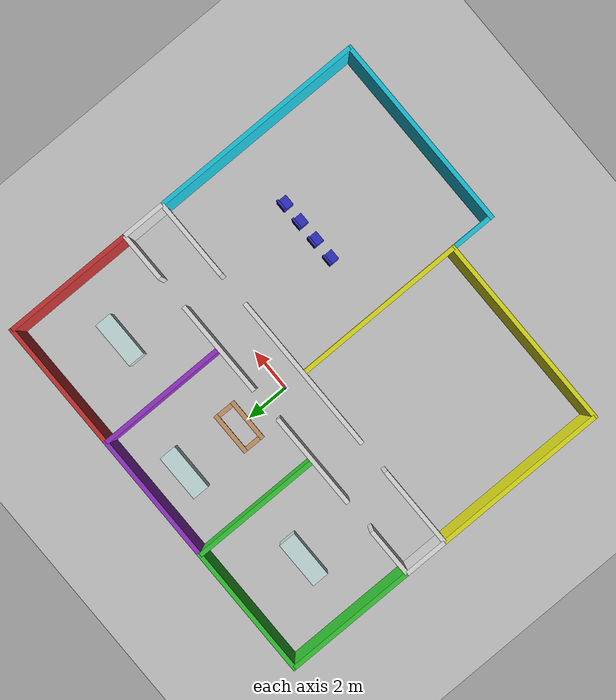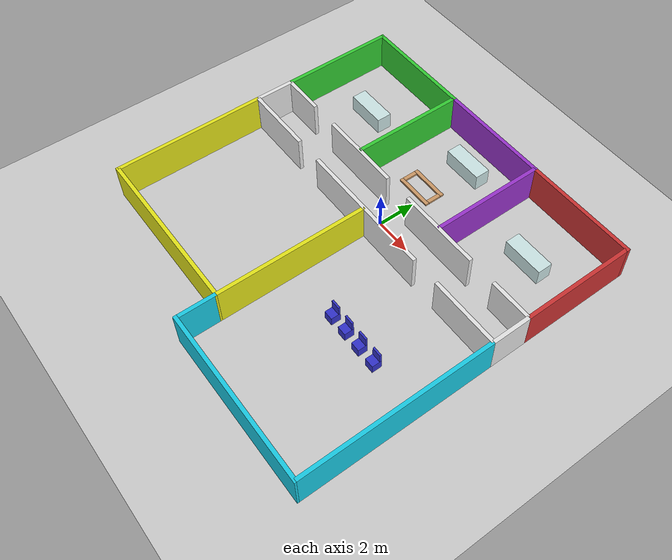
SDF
<sdf version="1.9">
 <world name="hospital_carrion_world">
  <physics name="1ms" type="ignored">
   <max_step_size>0.001</max_step_size>
   <real_time_factor>1</real_time_factor>
   <real_time_update_rate>1000</real_time_update_rate>
  </physics>
  <plugin name="gz::sim::systems::Physics" filename="ignition-gazebo-physics-system"/>
  <plugin name="gz::sim::systems::UserCommands" filename="ignition-gazebo-user-commands-system"/>
  <plugin name="gz::sim::systems::SceneBroadcaster" filename="ignition-gazebo-scene-broadcaster-system"/>
  <plugin name="gz::sim::systems::Contact" filename="ignition-gazebo-contact-system"/>
  <gravity>0 0 -9.8</gravity>
  <scene><ambient>0.5 0.5 0.5 1</ambient><background>0.7 0.7 0.7 1</background><shadows>true</shadows></scene>
  <light name="sun" type="directional">
   <pose>0 0 10 0 0 0</pose>
   <direction>-0.5 0.1 -0.9</direction>
   <diffuse>0.8 0.8 0.8 1</diffuse>
   <specular>0.2 0.2 0.2 1</specular>
  </light>
  <model name="ground_plane">
   <static>true</static>
   <link name="link">
    <collision name="collision">
     <geometry><plane><normal>0 0 1</normal><size>100 100</size></plane></geometry>
    </collision>
    <visual name="visual">
     <geometry><plane><normal>0 0 1</normal><size>100 100</size></plane></geometry>
     <material><ambient>0.8 0.8 0.8 1</ambient><diffuse>0.8 0.8 0.8 1</diffuse></material>
    </visual>
   </link>
  </model>
  <model name="building_structure">
   <static>true</static>
   <link name="walls">
    <visual name="cw_l">
     <pose>-9 0 1 0 0 1.5708</pose>
     <geometry><box><size>2 0.2 2</size></box></geometry>
     <material><ambient>0.9 0.9 0.9 1</ambient><diffuse>0.9 0.9 0.9 1</diffuse></material>
    </visual>
    <collision name="ccw_l">
     <pose>-9 0 1 0 0 1.5708</pose>
     <geometry><box><size>2 0.2 2</size></box></geometry>
    </collision>
    <visual name="cw_r">
     <pose>9 0 1 0 0 1.5708</pose>
     <geometry><box><size>2 0.2 2</size></box></geometry>
     <material><ambient>0.9 0.9 0.9 1</ambient><diffuse>0.9 0.9 0.9 1</diffuse></material>
    </visual>
    <collision name="ccw_r">
     <pose>9 0 1 0 0 1.5708</pose>
     <geometry><box><size>2 0.2 2</size></box></geometry>
    </collision>
    <visual name="cw_t1">
     <pose>-7.875 1 1 0 0 0</pose>
     <geometry><box><size>2.25 0.2 2</size></box></geometry>
     <material><ambient>0.9 0.9 0.9 1</ambient><diffuse>0.9 0.9 0.9 1</diffuse></material>
    </visual>
    <visual name="cw_t2">
     <pose>-3.0 1 1 0 0 0</pose>
     <geometry><box><size>4.5 0.2 2</size></box></geometry>
     <material><ambient>0.9 0.9 0.9 1</ambient><diffuse>0.9 0.9 0.9 1</diffuse></material>
    </visual>
    <visual name="cw_t3">
     <pose>3.0 1 1 0 0 0</pose>
     <geometry><box><size>4.5 0.2 2</size></box></geometry>
     <material><ambient>0.9 0.9 0.9 1</ambient><diffuse>0.9 0.9 0.9 1</diffuse></material>
    </visual>
    <visual name="cw_t4">
     <pose>7.875 1 1 0 0 0</pose>
     <geometry><box><size>2.25 0.2 2</size></box></geometry>
     <material><ambient>0.9 0.9 0.9 1</ambient><diffuse>0.9 0.9 0.9 1</diffuse></material>
    </visual>
    <collision name="ccw_t1">
     <pose>-7.875 1 1 0 0 0</pose>
     <geometry><box><size>2.25 0.2 2</size></box></geometry>
    </collision>
    <collision name="ccw_t2">
     <pose>-3.0 1 1 0 0 0</pose>
     <geometry><box><size>4.5 0.2 2</size></box></geometry>
    </collision>
    <collision name="ccw_t3">
     <pose>3.0 1 1 0 0 0</pose>
     <geometry><box><size>4.5 0.2 2</size></box></geometry>
    </collision>
    <collision name="ccw_t4">
     <pose>7.875 1 1 0 0 0</pose>
     <geometry><box><size>2.25 0.2 2</size></box></geometry>
    </collision>
    <visual name="cw_b1">
     <pose>-7.125 -1 1 0 0 0</pose>
     <geometry><box><size>3.75 0.2 2</size></box></geometry>
     <material><ambient>0.9 0.9 0.9 1</ambient><diffuse>0.9 0.9 0.9 1</diffuse></material>
    </visual>
    <visual name="cw_b2">
     <pose>0 -1 1 0 0 0</pose>
     <geometry><box><size>7.5 0.2 2</size></box></geometry>
     <material><ambient>0.9 0.9 0.9 1</ambient><diffuse>0.9 0.9 0.9 1</diffuse></material>
    </visual>
    <visual name="cw_b3">
     <pose>7.125 -1 1 0 0 0</pose>
     <geometry><box><size>3.75 0.2 2</size></box></geometry>
     <material><ambient>0.9 0.9 0.9 1</ambient><diffuse>0.9 0.9 0.9 1</diffuse></material>
    </visual>
    <collision name="ccw_b1">
     <pose>-7.125 -1 1 0 0 0</pose>
     <geometry><box><size>3.75 0.2 2</size></box></geometry>
    </collision>
    <collision name="ccw_b2">
     <pose>0 -1 1 0 0 0</pose>
     <geometry><box><size>7.5 0.2 2</size></box></geometry>
    </collision>
    <collision name="ccw_b3">
     <pose>7.125 -1 1 0 0 0</pose>
     <geometry><box><size>3.75 0.2 2</size></box></geometry>
    </collision>
    <visual name="r1_w1">
     <pose>-9 4 1 0 0 1.5708</pose>
     <geometry><box><size>6 0.2 2</size></box></geometry>
     <material><ambient>0.2 0.8 0.2 1</ambient><diffuse>0.2 0.8 0.2 1</diffuse></material>
    </visual>
    <visual name="r1_w2">
     <pose>-3 4 1 0 0 1.5708</pose>
     <geometry><box><size>6 0.2 2</size></box></geometry>
     <material><ambient>0.2 0.8 0.2 1</ambient><diffuse>0.2 0.8 0.2 1</diffuse></material>
    </visual>
    <visual name="r1_w3">
     <pose>-6 7 1 0 0 0</pose>
     <geometry><box><size>6.2 0.2 2</size></box></geometry>
     <material><ambient>0.2 0.8 0.2 1</ambient><diffuse>0.2 0.8 0.2 1</diffuse></material>
    </visual>
    <collision name="cr1_1">
     <pose>-9 4 1 0 0 1.5708</pose>
     <geometry><box><size>6 0.2 2</size></box></geometry>
    </collision>
    <collision name="cr1_2">
     <pose>-3 4 1 0 0 1.5708</pose>
     <geometry><box><size>6 0.2 2</size></box></geometry>
    </collision>
    <collision name="cr1_3">
     <pose>-6 7 1 0 0 0</pose>
     <geometry><box><size>6.2 0.2 2</size></box></geometry>
    </collision>
    <visual name="r2_w2">
     <pose>3 4 1 0 0 1.5708</pose>
     <geometry><box><size>6 0.2 2</size></box></geometry>
     <material><ambient>0.6 0.2 0.8 1</ambient><diffuse>0.6 0.2 0.8 1</diffuse></material>
    </visual>
    <visual name="r2_w3">
     <pose>0 7 1 0 0 0</pose>
     <geometry><box><size>6.2 0.2 2</size></box></geometry>
     <material><ambient>0.6 0.2 0.8 1</ambient><diffuse>0.6 0.2 0.8 1</diffuse></material>
    </visual>
    <collision name="cr2_2">
     <pose>3 4 1 0 0 1.5708</pose>
     <geometry><box><size>6 0.2 2</size></box></geometry>
    </collision>
    <collision name="cr2_3">
     <pose>0 7 1 0 0 0</pose>
     <geometry><box><size>6.2 0.2 2</size></box></geometry>
    </collision>
    <visual name="r3_w2">
     <pose>9 4 1 0 0 1.5708</pose>
     <geometry><box><size>6 0.2 2</size></box></geometry>
     <material><ambient>0.8 0.2 0.2 1</ambient><diffuse>0.8 0.2 0.2 1</diffuse></material>
    </visual>
    <visual name="r3_w3">
     <pose>6 7 1 0 0 0</pose>
     <geometry><box><size>6.2 0.2 2</size></box></geometry>
     <material><ambient>0.8 0.2 0.2 1</ambient><diffuse>0.8 0.2 0.2 1</diffuse></material>
    </visual>
    <collision name="cr3_2">
     <pose>9 4 1 0 0 1.5708</pose>
     <geometry><box><size>6 0.2 2</size></box></geometry>
    </collision>
    <collision name="cr3_3">
     <pose>6 7 1 0 0 0</pose>
     <geometry><box><size>6.2 0.2 2</size></box></geometry>
    </collision>
    <visual name="r4_w1">
     <pose>-9 -5 1 0 0 1.5708</pose>
     <geometry><box><size>8 0.2 2</size></box></geometry>
     <material><ambient>0.9 0.9 0.1 1</ambient><diffuse>0.9 0.9 0.1 1</diffuse></material>
    </visual>
    <visual name="r4_w2">
     <pose>0 -5 1 0 0 1.5708</pose>
     <geometry><box><size>8 0.2 2</size></box></geometry>
     <material><ambient>0.9 0.9 0.1 1</ambient><diffuse>0.9 0.9 0.1 1</diffuse></material>
    </visual>
    <visual name="r4_w3">
     <pose>-4.5 -9 1 0 0 0</pose>
     <geometry><box><size>9.2 0.2 2</size></box></geometry>
     <material><ambient>0.9 0.9 0.1 1</ambient><diffuse>0.9 0.9 0.1 1</diffuse></material>
    </visual>
    <collision name="cr4_1">
     <pose>-9 -5 1 0 0 1.5708</pose>
     <geometry><box><size>8 0.2 2</size></box></geometry>
    </collision>
    <collision name="cr4_2">
     <pose>0 -5 1 0 0 1.5708</pose>
     <geometry><box><size>8 0.2 2</size></box></geometry>
    </collision>
    <collision name="cr4_3">
     <pose>-4.5 -9 1 0 0 0</pose>
     <geometry><box><size>9.2 0.2 2</size></box></geometry>
    </collision>
    <visual name="r5_w2">
     <pose>9 -6 1 0 0 1.5708</pose>
     <geometry><box><size>10 0.2 2</size></box></geometry>
     <material><ambient>0.1 0.8 0.9 1</ambient><diffuse>0.1 0.8 0.9 1</diffuse></material>
    </visual>
    <visual name="r5_w3">
     <pose>4.5 -11 1 0 0 0</pose>
     <geometry><box><size>9.2 0.2 2</size></box></geometry>
     <material><ambient>0.1 0.8 0.9 1</ambient><diffuse>0.1 0.8 0.9 1</diffuse></material>
    </visual>
    <visual name="r5_w4">
     <pose>0 -10 1 0 0 1.5708</pose>
     <geometry><box><size>2 0.2 2</size></box></geometry>
     <material><ambient>0.1 0.8 0.9 1</ambient><diffuse>0.1 0.8 0.9 1</diffuse></material>
    </visual>
    <collision name="cr5_2">
     <pose>9 -6 1 0 0 1.5708</pose>
     <geometry><box><size>10 0.2 2</size></box></geometry>
    </collision>
    <collision name="cr5_3">
     <pose>4.5 -11 1 0 0 0</pose>
     <geometry><box><size>9.2 0.2 2</size></box></geometry>
    </collision>
    <collision name="cr5_4">
     <pose>0 -10 1 0 0 1.5708</pose>
     <geometry><box><size>2 0.2 2</size></box></geometry>
    </collision>
   </link>
  </model>
  <model name="operating_tables">
   <static>true</static>
   <link name="ot_link">
    <visual name="ot1">
     <pose>-6 4 0.45 0 0 0</pose>
     <geometry><box><size>2.2 0.8 0.9</size></box></geometry>
     <material><ambient>0.8 0.9 0.9 1</ambient><diffuse>0.8 0.9 0.9 1</diffuse></material>
    </visual>
    <collision name="cot1">
     <pose>-6 4 0.45 0 0 0</pose>
     <geometry><box><size>2.2 0.8 0.9</size></box></geometry>
    </collision>
    <visual name="ot2">
     <pose>0 5.5 0.45 0 0 0</pose>
     <geometry><box><size>2.2 0.8 0.9</size></box></geometry>
     <material><ambient>0.8 0.9 0.9 1</ambient><diffuse>0.8 0.9 0.9 1</diffuse></material>
    </visual>
    <collision name="cot2">
     <pose>0 5.5 0.45 0 0 0</pose>
     <geometry><box><size>2.2 0.8 0.9</size></box></geometry>
    </collision>
    <visual name="ot3">
     <pose>6 4 0.45 0 0 0</pose>
     <geometry><box><size>2.2 0.8 0.9</size></box></geometry>
     <material><ambient>0.8 0.9 0.9 1</ambient><diffuse>0.8 0.9 0.9 1</diffuse></material>
    </visual>
    <collision name="cot3">
     <pose>6 4 0.45 0 0 0</pose>
     <geometry><box><size>2.2 0.8 0.9</size></box></geometry>
    </collision>
   </link>
  </model>
  <model name="waiting_chairs">
   <static>true</static>
   <pose>4.5 -5 0 0 0 0</pose>
   <link name="chairs_link">
    <visual name="c1_s">
     <pose>-1.5 0 0.25 0 0 0</pose>
     <geometry><box><size>0.5 0.5 0.5</size></box></geometry>
     <material><ambient>0.2 0.2 0.8 1</ambient><diffuse>0.2 0.2 0.8 1</diffuse></material>
    </visual>
    <visual name="c1_b">
     <pose>-1.5 0.2 0.75 0 0 0</pose>
     <geometry><box><size>0.5 0.1 0.5</size></box></geometry>
     <material><ambient>0.2 0.2 0.8 1</ambient><diffuse>0.2 0.2 0.8 1</diffuse></material>
    </visual>
    <collision name="cc1">
     <pose>-1.5 0 0.25 0 0 0</pose>
     <geometry><box><size>0.5 0.5 0.5</size></box></geometry>
    </collision>
    <visual name="c2_s">
     <pose>-0.5 0 0.25 0 0 0</pose>
     <geometry><box><size>0.5 0.5 0.5</size></box></geometry>
     <material><ambient>0.2 0.2 0.8 1</ambient><diffuse>0.2 0.2 0.8 1</diffuse></material>
    </visual>
    <visual name="c2_b">
     <pose>-0.5 0.2 0.75 0 0 0</pose>
     <geometry><box><size>0.5 0.1 0.5</size></box></geometry>
     <material><ambient>0.2 0.2 0.8 1</ambient><diffuse>0.2 0.2 0.8 1</diffuse></material>
    </visual>
    <collision name="cc2">
     <pose>-0.5 0 0.25 0 0 0</pose>
     <geometry><box><size>0.5 0.5 0.5</size></box></geometry>
    </collision>
    <visual name="c3_s">
     <pose>0.5 0 0.25 0 0 0</pose>
     <geometry><box><size>0.5 0.5 0.5</size></box></geometry>
     <material><ambient>0.2 0.2 0.8 1</ambient><diffuse>0.2 0.2 0.8 1</diffuse></material>
    </visual>
    <visual name="c3_b">
     <pose>0.5 0.2 0.75 0 0 0</pose>
     <geometry><box><size>0.5 0.1 0.5</size></box></geometry>
     <material><ambient>0.2 0.2 0.8 1</ambient><diffuse>0.2 0.2 0.8 1</diffuse></material>
    </visual>
    <collision name="cc3">
     <pose>0.5 0 0.25 0 0 0</pose>
     <geometry><box><size>0.5 0.5 0.5</size></box></geometry>
    </collision>
    <visual name="c4_s">
     <pose>1.5 0 0.25 0 0 0</pose>
     <geometry><box><size>0.5 0.5 0.5</size></box></geometry>
     <material><ambient>0.2 0.2 0.8 1</ambient><diffuse>0.2 0.2 0.8 1</diffuse></material>
    </visual>
    <visual name="c4_b">
     <pose>1.5 0.2 0.75 0 0 0</pose>
     <geometry><box><size>0.5 0.1 0.5</size></box></geometry>
     <material><ambient>0.2 0.2 0.8 1</ambient><diffuse>0.2 0.2 0.8 1</diffuse></material>
    </visual>
    <collision name="cc4">
     <pose>1.5 0 0.25 0 0 0</pose>
     <geometry><box><size>0.5 0.5 0.5</size></box></geometry>
    </collision>
   </link>
  </model>
  <model name="custom_hole_desk">
   <static>true</static>
   <pose>0 2.5 0 0 0 0</pose>
   <link name="desk_link">
    <visual name="top_front">
     <pose>0 0.45 0.95 0 0 0</pose>
     <geometry><box><size>2.0 0.2 0.1</size></box></geometry>
     <material><ambient>0.8 0.6 0.4 1</ambient><diffuse>0.8 0.6 0.4 1</diffuse></material>
    </visual>
    <visual name="top_back">
     <pose>0 -0.45 0.95 0 0 0</pose>
     <geometry><box><size>2.0 0.2 0.1</size></box></geometry>
     <material><ambient>0.8 0.6 0.4 1</ambient><diffuse>0.8 0.6 0.4 1</diffuse></material>
    </visual>
    <visual name="top_left">
     <pose>-0.9 0 0.95 0 0 0</pose>
     <geometry><box><size>0.2 0.7 0.1</size></box></geometry>
     <material><ambient>0.8 0.6 0.4 1</ambient><diffuse>0.8 0.6 0.4 1</diffuse></material>
    </visual>
    <visual name="top_right">
     <pose>0.9 0 0.95 0 0 0</pose>
     <geometry><box><size>0.2 0.7 0.1</size></box></geometry>
     <material><ambient>0.8 0.6 0.4 1</ambient><diffuse>0.8 0.6 0.4 1</diffuse></material>
    </visual>
    <collision name="ctf">
     <pose>0 0.45 0.95 0 0 0</pose>
     <geometry><box><size>2.0 0.2 0.1</size></box></geometry>
    </collision>
    <collision name="ctb">
     <pose>0 -0.45 0.95 0 0 0</pose>
     <geometry><box><size>2.0 0.2 0.1</size></box></geometry>
    </collision>
    <collision name="ctl">
     <pose>-0.9 0 0.95 0 0 0</pose>
     <geometry><box><size>0.2 0.7 0.1</size></box></geometry>
    </collision>
    <collision name="ctr">
     <pose>0.9 0 0.95 0 0 0</pose>
     <geometry><box><size>0.2 0.7 0.1</size></box></geometry>
    </collision>
   </link>
  </model>
 </world>
</sdf>
